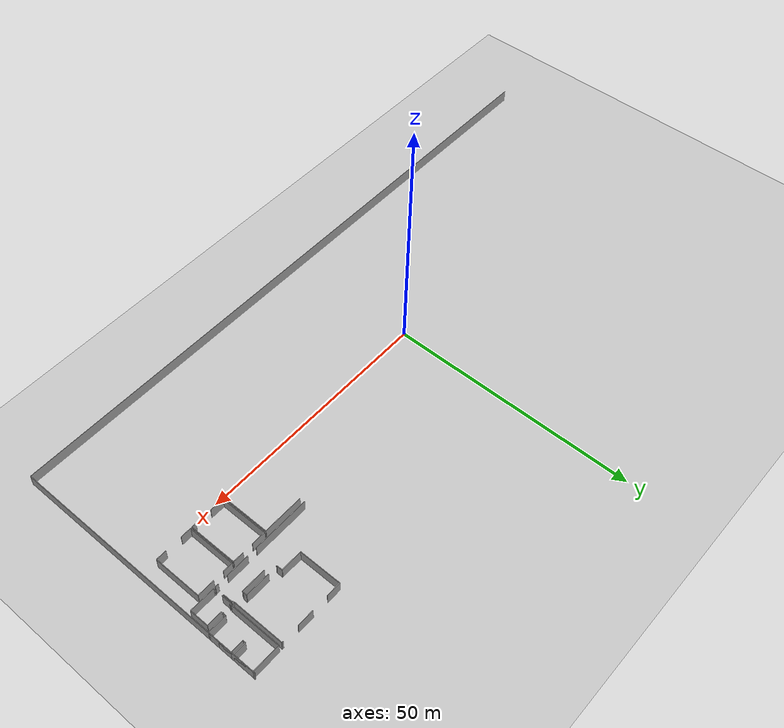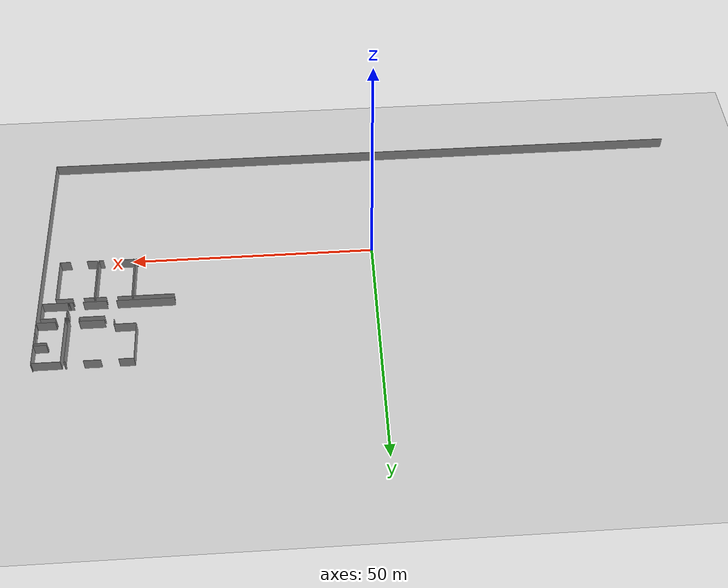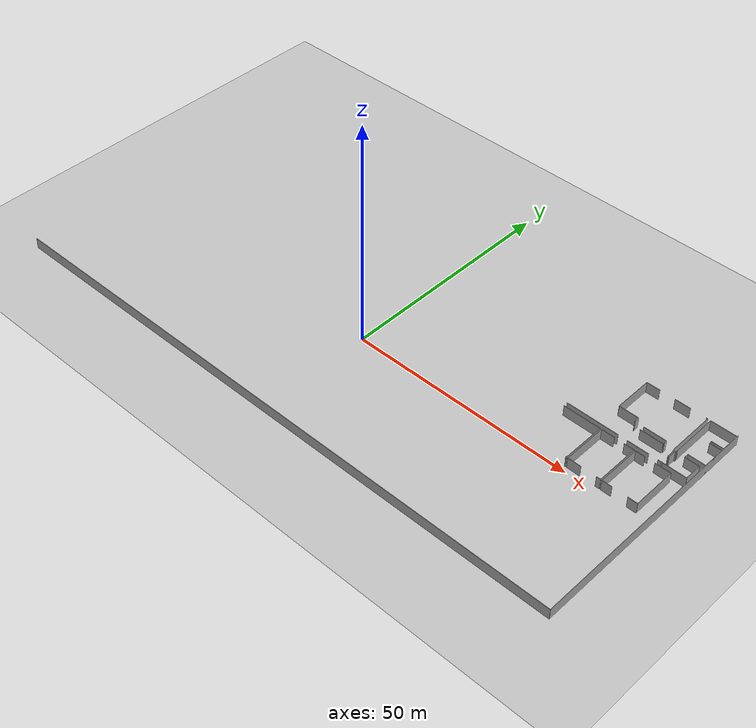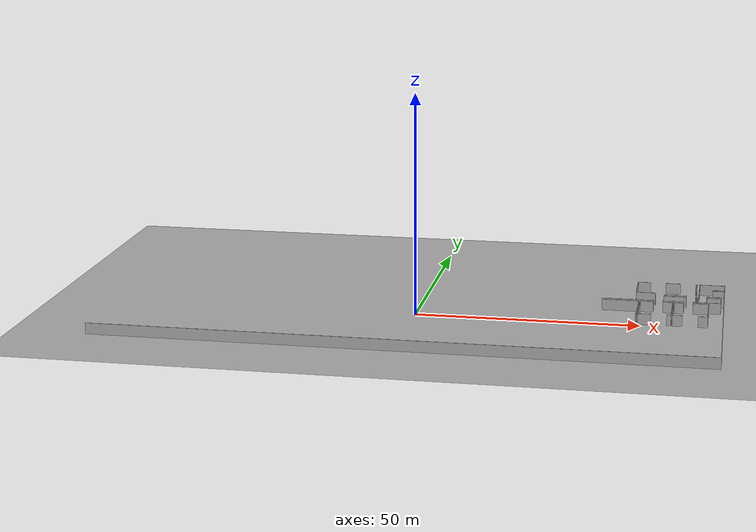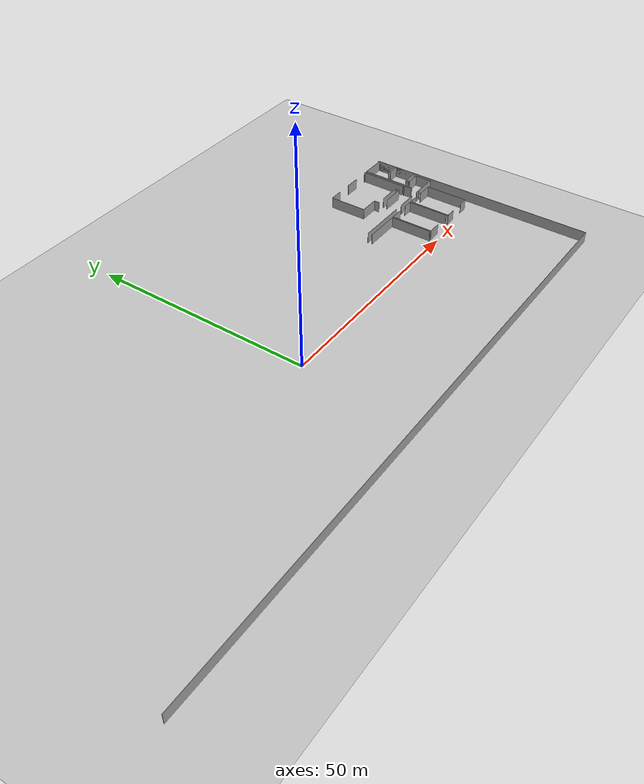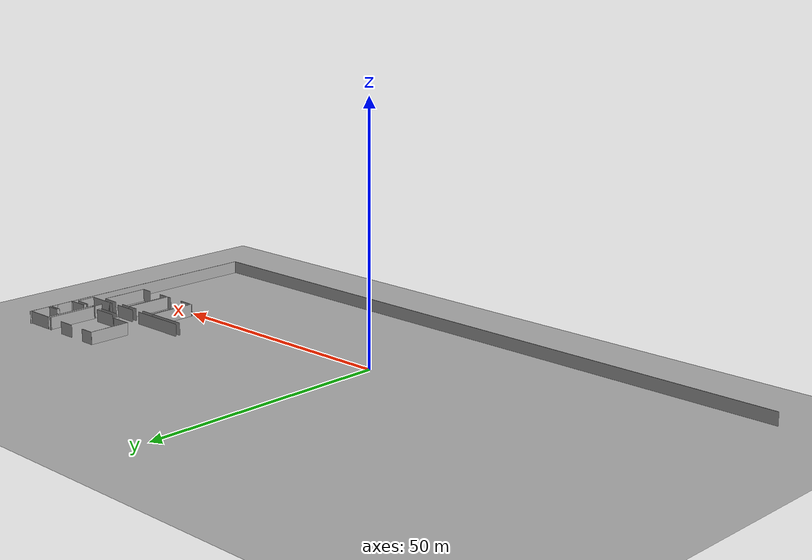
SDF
<sdf version="1.6">
 <world name="default">
  <model name="ground_plane">
   <static>1</static>
   <link name="link">
    <collision name="collision">
     <geometry><plane><normal>0 0 1</normal><size>100 100</size></plane></geometry>
     <surface><friction><ode><mu>100</mu><mu2>50</mu2></ode></friction></surface>
    </collision>
    <visual name="visual">
     <cast_shadows>0</cast_shadows>
     <geometry><plane><normal>0 0 1</normal><size>100 100</size></plane></geometry>
     <material>
      <script><uri>file://media/materials/scripts/gazebo.material</uri><name>Gazebo/Grey</name></script>
     </material>
    </visual>
   </link>
  </model>
  <model name="0510032192_A_40_1_103">
   <static>1</static>
   <link name="Wall_195">
    <collision name="Wall_195_Collision">
     <geometry><box><size>4.99663333884 0.1 2.5</size></box></geometry>
     <pose>2.49831666942 0 1.25 0 0 0</pose>
    </collision>
    <visual name="Wall_195_Visual">
     <pose>2.49831666942 0 1.25 0 0 0</pose>
     <geometry><box><size>4.99663333884 0.1 2.5</size></box></geometry>
     <material>
      <script><uri>file://media/materials/scripts/gazebo.material</uri><name>Gazebo/Grey</name></script>
      <ambient>1 1 1 1</ambient>
     </material>
    </visual>
    <pose>121.824603306 -10.9934826522 0 0 0 0.0</pose>
   </link>
   <link name="Wall_196">
    <collision name="Wall_196_Collision">
     <geometry><box><size>0.207081422383 0.1 2.5</size></box></geometry>
     <pose>0.103540711191 0 1.25 0 0 0</pose>
    </collision>
    <visual name="Wall_196_Visual">
     <pose>0.103540711191 0 1.25 0 0 0</pose>
     <geometry><box><size>0.207081422383 0.1 2.5</size></box></geometry>
     <material>
      <script><uri>file://media/materials/scripts/gazebo.material</uri><name>Gazebo/Grey</name></script>
      <ambient>1 1 1 1</ambient>
     </material>
    </visual>
    <pose>128.998767675 -10.9934826522 0 0 0 0.0</pose>
   </link>
   <link name="Wall_197">
    <collision name="Wall_197_Collision">
     <geometry><box><size>1.85013911298 0.1 2.5</size></box></geometry>
     <pose>0.92506955649 0 1.25 0 0 0</pose>
    </collision>
    <visual name="Wall_197_Visual">
     <pose>0.92506955649 0 1.25 0 0 0</pose>
     <geometry><box><size>1.85013911298 0.1 2.5</size></box></geometry>
     <material>
      <script><uri>file://media/materials/scripts/gazebo.material</uri><name>Gazebo/Grey</name></script>
      <ambient>1 1 1 1</ambient>
     </material>
    </visual>
    <pose>129.205849097 -10.9934826522 0 0 0 -1.57079632679</pose>
   </link>
   <link name="Wall_198">
    <collision name="Wall_198_Collision">
     <geometry><box><size>0.100999834843 0.1 2.5</size></box></geometry>
     <pose>0.0504999174215 0 1.25 0 0 0</pose>
    </collision>
    <visual name="Wall_198_Visual">
     <pose>0.0504999174215 0 1.25 0 0 0</pose>
     <geometry><box><size>0.100999834843 0.1 2.5</size></box></geometry>
     <material>
      <script><uri>file://media/materials/scripts/gazebo.material</uri><name>Gazebo/Grey</name></script>
      <ambient>1 1 1 1</ambient>
     </material>
    </visual>
    <pose>129.205849097 -14.6821998907 0 0 0 -1.57079632679</pose>
   </link>
   <link name="Wall_199">
    <collision name="Wall_199_Collision">
     <geometry><box><size>0.762262904476 0.1 2.5</size></box></geometry>
     <pose>0.381131452238 0 1.25 0 0 0</pose>
    </collision>
    <visual name="Wall_199_Visual">
     <pose>0.381131452238 0 1.25 0 0 0</pose>
     <geometry><box><size>0.762262904476 0.1 2.5</size></box></geometry>
     <material>
      <script><uri>file://media/materials/scripts/gazebo.material</uri><name>Gazebo/Grey</name></script>
      <ambient>1 1 1 1</ambient>
     </material>
    </visual>
    <pose>129.205849097 -14.7831997256 0 0 0 3.14159265359</pose>
   </link>
   <link name="Wall_200">
    <collision name="Wall_200_Collision">
     <geometry><box><size>4.69553949157 0.1 2.5</size></box></geometry>
     <pose>2.34776974579 0 1.25 0 0 0</pose>
    </collision>
    <visual name="Wall_200_Visual">
     <pose>2.34776974579 0 1.25 0 0 0</pose>
     <geometry><box><size>4.69553949157 0.1 2.5</size></box></geometry>
     <material>
      <script><uri>file://media/materials/scripts/gazebo.material</uri><name>Gazebo/Grey</name></script>
      <ambient>1 1 1 1</ambient>
     </material>
    </visual>
    <pose>126.451539136 -14.7831997256 0 0 0 3.14159265359</pose>
   </link>
   <link name="Wall_201">
    <collision name="Wall_201_Collision">
     <geometry><box><size>11.6472501366 0.1 2.5</size></box></geometry>
     <pose>5.82362506829 0 1.25 0 0 0</pose>
    </collision>
    <visual name="Wall_201_Visual">
     <pose>5.82362506829 0 1.25 0 0 0</pose>
     <geometry><box><size>11.6472501366 0.1 2.5</size></box></geometry>
     <material>
      <script><uri>file://media/materials/scripts/gazebo.material</uri><name>Gazebo/Grey</name></script>
      <ambient>1 1 1 1</ambient>
     </material>
    </visual>
    <pose>119.779197845 -14.7831997256 0 0 0 3.14159265359</pose>
   </link>
   <link name="Wall_271">
    <collision name="Wall_271_Collision">
     <geometry><box><size>4.38555257708 0.1 2.5</size></box></geometry>
     <pose>2.19277628854 0 1.25 0 0 0</pose>
    </collision>
    <visual name="Wall_271_Visual">
     <pose>2.19277628854 0 1.25 0 0 0</pose>
     <geometry><box><size>4.38555257708 0.1 2.5</size></box></geometry>
     <material>
      <script><uri>file://media/materials/scripts/gazebo.material</uri><name>Gazebo/Grey</name></script>
      <ambient>1 1 1 1</ambient>
     </material>
    </visual>
    <pose>115.499091637 -8.83284844943 0 0 0 0.0</pose>
   </link>
   <link name="Wall_272">
    <collision name="Wall_272_Collision">
     <geometry><box><size>1.17528235488 0.1 2.5</size></box></geometry>
     <pose>0.587641177442 0 1.25 0 0 0</pose>
    </collision>
    <visual name="Wall_272_Visual">
     <pose>0.587641177442 0 1.25 0 0 0</pose>
     <geometry><box><size>1.17528235488 0.1 2.5</size></box></geometry>
     <material>
      <script><uri>file://media/materials/scripts/gazebo.material</uri><name>Gazebo/Grey</name></script>
      <ambient>1 1 1 1</ambient>
     </material>
    </visual>
    <pose>119.884644214 -8.83284844943 0 0 0 -1.57079632679</pose>
   </link>
   <link name="Wall_273">
    <collision name="Wall_273_Collision">
     <geometry><box><size>0.0952828630595 0.1 2.5</size></box></geometry>
     <pose>0.0476414315297 0 1.25 0 0 0</pose>
    </collision>
    <visual name="Wall_273_Visual">
     <pose>0.0476414315297 0 1.25 0 0 0</pose>
     <geometry><box><size>0.0952828630595 0.1 2.5</size></box></geometry>
     <material>
      <script><uri>file://media/materials/scripts/gazebo.material</uri><name>Gazebo/Grey</name></script>
      <ambient>1 1 1 1</ambient>
     </material>
    </visual>
    <pose>119.884644214 -10.0081308043 0 0 0 0.0</pose>
   </link>
   <link name="Wall_274">
    <collision name="Wall_274_Collision">
     <geometry><box><size>5.0233125405 0.1 2.5</size></box></geometry>
     <pose>2.51165627025 0 1.25 0 0 0</pose>
    </collision>
    <visual name="Wall_274_Visual">
     <pose>2.51165627025 0 1.25 0 0 0</pose>
     <geometry><box><size>5.0233125405 0.1 2.5</size></box></geometry>
     <material>
      <script><uri>file://media/materials/scripts/gazebo.material</uri><name>Gazebo/Grey</name></script>
      <ambient>1 1 1 1</ambient>
     </material>
    </visual>
    <pose>121.837307687 -10.0081308043 0 0 0 0.0</pose>
   </link>
   <link name="Wall_275">
    <collision name="Wall_275_Collision">
     <geometry><box><size>0.720846619999 0.1 2.5</size></box></geometry>
     <pose>0.36042331 0 1.25 0 0 0</pose>
    </collision>
    <visual name="Wall_275_Visual">
     <pose>0.36042331 0 1.25 0 0 0</pose>
     <geometry><box><size>0.720846619999 0.1 2.5</size></box></geometry>
     <material>
      <script><uri>file://media/materials/scripts/gazebo.material</uri><name>Gazebo/Grey</name></script>
      <ambient>1 1 1 1</ambient>
     </material>
    </visual>
    <pose>126.860620228 -10.0081308043 0 0 0 -1.57079632679</pose>
   </link>
   <link name="Wall_276">
    <collision name="Wall_276_Collision">
     <geometry><box><size>10.4130194504 0.1 2.5</size></box></geometry>
     <pose>5.2065097252 0 1.25 0 0 0</pose>
    </collision>
    <visual name="Wall_276_Visual">
     <pose>5.2065097252 0 1.25 0 0 0</pose>
     <geometry><box><size>10.4130194504 0.1 2.5</size></box></geometry>
     <material>
      <script><uri>file://media/materials/scripts/gazebo.material</uri><name>Gazebo/Grey</name></script>
      <ambient>1 1 1 1</ambient>
     </material>
    </visual>
    <pose>128.989874608 -10.7289774243 0 0 0 1.57079632679</pose>
   </link>
   <link name="Wall_277">
    <collision name="Wall_277_Collision">
     <geometry><box><size>0.303634723616 0.1 2.5</size></box></geometry>
     <pose>0.151817361808 0 1.25 0 0 0</pose>
    </collision>
    <visual name="Wall_277_Visual">
     <pose>0.151817361808 0 1.25 0 0 0</pose>
     <geometry><box><size>0.303634723616 0.1 2.5</size></box></geometry>
     <material>
      <script><uri>file://media/materials/scripts/gazebo.material</uri><name>Gazebo/Grey</name></script>
      <ambient>1 1 1 1</ambient>
     </material>
    </visual>
    <pose>128.989874608 -0.315957973905 0 0 0 3.14159265359</pose>
   </link>
   <link name="Wall_278">
    <collision name="Wall_278_Collision">
     <geometry><box><size>3.43272394649 0.1 2.5</size></box></geometry>
     <pose>1.71636197324 0 1.25 0 0 0</pose>
    </collision>
    <visual name="Wall_278_Visual">
     <pose>1.71636197324 0 1.25 0 0 0</pose>
     <geometry><box><size>3.43272394649 0.1 2.5</size></box></geometry>
     <material>
      <script><uri>file://media/materials/scripts/gazebo.material</uri><name>Gazebo/Grey</name></script>
      <ambient>1 1 1 1</ambient>
     </material>
    </visual>
    <pose>125.263679443 -0.315957973905 0 0 0 3.14159265359</pose>
   </link>
   <link name="Wall_279">
    <collision name="Wall_279_Collision">
     <geometry><box><size>2.94360524945 0.1 2.5</size></box></geometry>
     <pose>1.47180262473 0 1.25 0 0 0</pose>
    </collision>
    <visual name="Wall_279_Visual">
     <pose>1.47180262473 0 1.25 0 0 0</pose>
     <geometry><box><size>2.94360524945 0.1 2.5</size></box></geometry>
     <material>
      <script><uri>file://media/materials/scripts/gazebo.material</uri><name>Gazebo/Grey</name></script>
      <ambient>1 1 1 1</ambient>
     </material>
    </visual>
    <pose>118.431262943 -0.315957973905 0 0 0 3.14159265359</pose>
   </link>
   <link name="Wall_280">
    <collision name="Wall_280_Collision">
     <geometry><box><size>8.51689815057 0.1 2.5</size></box></geometry>
     <pose>4.25844907528 0 1.25 0 0 0</pose>
    </collision>
    <visual name="Wall_280_Visual">
     <pose>4.25844907528 0 1.25 0 0 0</pose>
     <geometry><box><size>8.51689815057 0.1 2.5</size></box></geometry>
     <material>
      <script><uri>file://media/materials/scripts/gazebo.material</uri><name>Gazebo/Grey</name></script>
      <ambient>1 1 1 1</ambient>
     </material>
    </visual>
    <pose>115.487657693 -0.315957973905 0 0 0 -1.56945382548</pose>
   </link>
   <link name="Wall_281">
    <collision name="Wall_281_Collision">
     <geometry><box><size>3.79225794977 0.1 2.5</size></box></geometry>
     <pose>1.89612897488 0 1.25 0 0 0</pose>
    </collision>
    <visual name="Wall_281_Visual">
     <pose>1.89612897488 0 1.25 0 0 0</pose>
     <geometry><box><size>3.79225794977 0.1 2.5</size></box></geometry>
     <material>
      <script><uri>file://media/materials/scripts/gazebo.material</uri><name>Gazebo/Grey</name></script>
      <ambient>1 1 1 1</ambient>
     </material>
    </visual>
    <pose>131.512964822 -10.0523420528 0 0 0 0.0</pose>
   </link>
   <link name="Wall_282">
    <collision name="Wall_282_Collision">
     <geometry><box><size>0.292327823866 0.1 2.5</size></box></geometry>
     <pose>0.146163911933 0 1.25 0 0 0</pose>
    </collision>
    <visual name="Wall_282_Visual">
     <pose>0.146163911933 0 1.25 0 0 0</pose>
     <geometry><box><size>0.292327823866 0.1 2.5</size></box></geometry>
     <material>
      <script><uri>file://media/materials/scripts/gazebo.material</uri><name>Gazebo/Grey</name></script>
      <ambient>1 1 1 1</ambient>
     </material>
    </visual>
    <pose>135.305222771 -10.0523420528 0 0 0 1.57079632679</pose>
   </link>
   <link name="Wall_283">
    <collision name="Wall_283_Collision">
     <geometry><box><size>2.73144207437 0.1 2.5</size></box></geometry>
     <pose>1.36572103719 0 1.25 0 0 0</pose>
    </collision>
    <visual name="Wall_283_Visual">
     <pose>1.36572103719 0 1.25 0 0 0</pose>
     <geometry><box><size>2.73144207437 0.1 2.5</size></box></geometry>
     <material>
      <script><uri>file://media/materials/scripts/gazebo.material</uri><name>Gazebo/Grey</name></script>
      <ambient>1 1 1 1</ambient>
     </material>
    </visual>
    <pose>135.305222771 -7.79693316225 0 0 0 1.57079632679</pose>
   </link>
   <link name="Wall_284">
    <collision name="Wall_284_Collision">
     <geometry><box><size>2.58915299887 0.1 2.5</size></box></geometry>
     <pose>1.29457649943 0 1.25 0 0 0</pose>
    </collision>
    <visual name="Wall_284_Visual">
     <pose>1.29457649943 0 1.25 0 0 0</pose>
     <geometry><box><size>2.58915299887 0.1 2.5</size></box></geometry>
     <material>
      <script><uri>file://media/materials/scripts/gazebo.material</uri><name>Gazebo/Grey</name></script>
      <ambient>1 1 1 1</ambient>
     </material>
    </visual>
    <pose>135.305222771 -5.06549108788 0 0 0 3.14159265359</pose>
   </link>
   <link name="Wall_285">
    <collision name="Wall_285_Collision">
     <geometry><box><size>0.55975505952 0.1 2.5</size></box></geometry>
     <pose>0.27987752976 0 1.25 0 0 0</pose>
    </collision>
    <visual name="Wall_285_Visual">
     <pose>0.27987752976 0 1.25 0 0 0</pose>
     <geometry><box><size>0.55975505952 0.1 2.5</size></box></geometry>
     <material>
      <script><uri>file://media/materials/scripts/gazebo.material</uri><name>Gazebo/Grey</name></script>
      <ambient>1 1 1 1</ambient>
     </material>
    </visual>
    <pose>132.716069772 -5.06549108788 0 0 0 1.57079632679</pose>
   </link>
   <link name="Wall_286">
    <collision name="Wall_286_Collision">
     <geometry><box><size>2.58915299887 0.1 2.5</size></box></geometry>
     <pose>1.29457649943 0 1.25 0 0 0</pose>
    </collision>
    <visual name="Wall_286_Visual">
     <pose>1.29457649943 0 1.25 0 0 0</pose>
     <geometry><box><size>2.58915299887 0.1 2.5</size></box></geometry>
     <material>
      <script><uri>file://media/materials/scripts/gazebo.material</uri><name>Gazebo/Grey</name></script>
      <ambient>1 1 1 1</ambient>
     </material>
    </visual>
    <pose>132.716069772 -4.50573602836 0 0 0 0.0</pose>
   </link>
   <link name="Wall_287">
    <collision name="Wall_287_Collision">
     <geometry><box><size>4.17427870873 0.1 2.5</size></box></geometry>
     <pose>2.08713935436 0 1.25 0 0 0</pose>
    </collision>
    <visual name="Wall_287_Visual">
     <pose>2.08713935436 0 1.25 0 0 0</pose>
     <geometry><box><size>4.17427870873 0.1 2.5</size></box></geometry>
     <material>
      <script><uri>file://media/materials/scripts/gazebo.material</uri><name>Gazebo/Grey</name></script>
      <ambient>1 1 1 1</ambient>
     </material>
    </visual>
    <pose>135.305222771 -4.50573602836 0 0 0 1.57079632679</pose>
   </link>
   <link name="Wall_288">
    <collision name="Wall_288_Collision">
     <geometry><box><size>5.66742469478 0.1 2.5</size></box></geometry>
     <pose>2.83371234739 0 1.25 0 0 0</pose>
    </collision>
    <visual name="Wall_288_Visual">
     <pose>2.83371234739 0 1.25 0 0 0</pose>
     <geometry><box><size>5.66742469478 0.1 2.5</size></box></geometry>
     <material>
      <script><uri>file://media/materials/scripts/gazebo.material</uri><name>Gazebo/Grey</name></script>
      <ambient>1 1 1 1</ambient>
     </material>
    </visual>
    <pose>135.305222771 -0.33145731963 0 0 0 3.14159265359</pose>
   </link>
   <link name="Wall_289">
    <collision name="Wall_289_Collision">
     <geometry><box><size>10.3644887122 0.1 2.5</size></box></geometry>
     <pose>5.18224435608 0 1.25 0 0 0</pose>
    </collision>
    <visual name="Wall_289_Visual">
     <pose>5.18224435608 0 1.25 0 0 0</pose>
     <geometry><box><size>10.3644887122 0.1 2.5</size></box></geometry>
     <material>
      <script><uri>file://media/materials/scripts/gazebo.material</uri><name>Gazebo/Grey</name></script>
      <ambient>1 1 1 1</ambient>
     </material>
    </visual>
    <pose>129.637798077 -0.33145731963 0 0 0 -1.57079632679</pose>
   </link>
   <link name="Wall_290">
    <collision name="Wall_290_Collision">
     <geometry><box><size>0.0749558522734 0.1 2.5</size></box></geometry>
     <pose>0.0374779261367 0 1.25 0 0 0</pose>
    </collision>
    <visual name="Wall_290_Visual">
     <pose>0.0374779261367 0 1.25 0 0 0</pose>
     <geometry><box><size>0.0749558522734 0.1 2.5</size></box></geometry>
     <material>
      <script><uri>file://media/materials/scripts/gazebo.material</uri><name>Gazebo/Grey</name></script>
      <ambient>1 1 1 1</ambient>
     </material>
    </visual>
    <pose>129.637798077 -10.6959460318 0 0 0 0.0</pose>
   </link>
   <link name="Wall_291">
    <collision name="Wall_291_Collision">
     <geometry><box><size>0.119421188368 0.1 2.5</size></box></geometry>
     <pose>0.0597105941839 0 1.25 0 0 0</pose>
    </collision>
    <visual name="Wall_291_Visual">
     <pose>0.0597105941839 0 1.25 0 0 0</pose>
     <geometry><box><size>0.119421188368 0.1 2.5</size></box></geometry>
     <material>
      <script><uri>file://media/materials/scripts/gazebo.material</uri><name>Gazebo/Grey</name></script>
      <ambient>1 1 1 1</ambient>
     </material>
    </visual>
    <pose>131.387191442 -10.6959460318 0 0 0 0.0</pose>
   </link>
   <link name="Wall_292">
    <collision name="Wall_292_Collision">
     <geometry><box><size>0.643635325421 0.1 2.5</size></box></geometry>
     <pose>0.32181766271 0 1.25 0 0 0</pose>
    </collision>
    <visual name="Wall_292_Visual">
     <pose>0.32181766271 0 1.25 0 0 0</pose>
     <geometry><box><size>0.643635325421 0.1 2.5</size></box></geometry>
     <material>
      <script><uri>file://media/materials/scripts/gazebo.material</uri><name>Gazebo/Grey</name></script>
      <ambient>1 1 1 1</ambient>
     </material>
    </visual>
    <pose>131.506612631 -10.6959460318 0 0 0 1.56092692755</pose>
   </link>
   <link name="Wall_293">
    <collision name="Wall_293_Collision">
     <geometry><box><size>0.0863897958406 0.1 2.5</size></box></geometry>
     <pose>0.0431948979203 0 1.25 0 0 0</pose>
    </collision>
    <visual name="Wall_293_Visual">
     <pose>0.0431948979203 0 1.25 0 0 0</pose>
     <geometry><box><size>0.0863897958406 0.1 2.5</size></box></geometry>
     <material>
      <script><uri>file://media/materials/scripts/gazebo.material</uri><name>Gazebo/Grey</name></script>
      <ambient>1 1 1 1</ambient>
     </material>
    </visual>
    <pose>129.449773227 -14.7804047616 0 0 0 1.57079632679</pose>
   </link>
   <link name="Wall_294">
    <collision name="Wall_294_Collision">
     <geometry><box><size>1.90159185903 0.1 2.5</size></box></geometry>
     <pose>0.950795929516 0 1.25 0 0 0</pose>
    </collision>
    <visual name="Wall_294_Visual">
     <pose>0.950795929516 0 1.25 0 0 0</pose>
     <geometry><box><size>1.90159185903 0.1 2.5</size></box></geometry>
     <material>
      <script><uri>file://media/materials/scripts/gazebo.material</uri><name>Gazebo/Grey</name></script>
      <ambient>1 1 1 1</ambient>
     </material>
    </visual>
    <pose>129.449773227 -12.8823701295 0 0 0 1.57079632679</pose>
   </link>
   <link name="Wall_295">
    <collision name="Wall_295_Collision">
     <geometry><box><size>0.264251140218 0.1 2.5</size></box></geometry>
     <pose>0.132125570109 0 1.25 0 0 0</pose>
    </collision>
    <visual name="Wall_295_Visual">
     <pose>0.132125570109 0 1.25 0 0 0</pose>
     <geometry><box><size>0.264251140218 0.1 2.5</size></box></geometry>
     <material>
      <script><uri>file://media/materials/scripts/gazebo.material</uri><name>Gazebo/Grey</name></script>
      <ambient>1 1 1 1</ambient>
     </material>
    </visual>
    <pose>129.449773227 -10.9807782704 0 0 0 0.0</pose>
   </link>
   <link name="Wall_296">
    <collision name="Wall_296_Collision">
     <geometry><box><size>3.10876221209 0.1 2.5</size></box></geometry>
     <pose>1.55438110604 0 1.25 0 0 0</pose>
    </collision>
    <visual name="Wall_296_Visual">
     <pose>1.55438110604 0 1.25 0 0 0</pose>
     <geometry><box><size>3.10876221209 0.1 2.5</size></box></geometry>
     <material>
      <script><uri>file://media/materials/scripts/gazebo.material</uri><name>Gazebo/Grey</name></script>
      <ambient>1 1 1 1</ambient>
     </material>
    </visual>
    <pose>131.487556058 -10.9807782704 0 0 0 0.0</pose>
   </link>
   <link name="Wall_297">
    <collision name="Wall_297_Collision">
     <geometry><box><size>3.80331076188 0.1 2.5</size></box></geometry>
     <pose>1.90165538094 0 1.25 0 0 0</pose>
    </collision>
    <visual name="Wall_297_Visual">
     <pose>1.90165538094 0 1.25 0 0 0</pose>
     <geometry><box><size>3.80331076188 0.1 2.5</size></box></geometry>
     <material>
      <script><uri>file://media/materials/scripts/gazebo.material</uri><name>Gazebo/Grey</name></script>
      <ambient>1 1 1 1</ambient>
     </material>
    </visual>
    <pose>134.59631827 -10.9807782704 0 0 0 -1.57079632679</pose>
   </link>
   <link name="Wall_298">
    <collision name="Wall_298_Collision">
     <geometry><box><size>5.14654636212 0.1 2.5</size></box></geometry>
     <pose>2.57327318106 0 1.25 0 0 0</pose>
    </collision>
    <visual name="Wall_298_Visual">
     <pose>2.57327318106 0 1.25 0 0 0</pose>
     <geometry><box><size>5.14654636212 0.1 2.5</size></box></geometry>
     <material>
      <script><uri>file://media/materials/scripts/gazebo.material</uri><name>Gazebo/Grey</name></script>
      <ambient>1 1 1 1</ambient>
     </material>
    </visual>
    <pose>134.59631827 -14.7840890323 0 0 0 3.14087678109</pose>
   </link>
   <link name="Wall_299">
    <collision name="Wall_299_Collision">
     <geometry><box><size>2.20166935576 0.1 2.5</size></box></geometry>
     <pose>1.10083467788 0 1.25 0 0 0</pose>
    </collision>
    <visual name="Wall_299_Visual">
     <pose>1.10083467788 0 1.25 0 0 0</pose>
     <geometry><box><size>2.20166935576 0.1 2.5</size></box></geometry>
     <material>
      <script><uri>file://media/materials/scripts/gazebo.material</uri><name>Gazebo/Grey</name></script>
      <ambient>1 1 1 1</ambient>
     </material>
    </visual>
    <pose>124.296875993 -25.4654250251 0 0 0 0.0</pose>
   </link>
   <link name="Wall_300">
    <collision name="Wall_300_Collision">
     <geometry><box><size>2.10257517818 0.1 2.5</size></box></geometry>
     <pose>1.05128758909 0 1.25 0 0 0</pose>
    </collision>
    <visual name="Wall_300_Visual">
     <pose>1.05128758909 0 1.25 0 0 0</pose>
     <geometry><box><size>2.10257517818 0.1 2.5</size></box></geometry>
     <material>
      <script><uri>file://media/materials/scripts/gazebo.material</uri><name>Gazebo/Grey</name></script>
      <ambient>1 1 1 1</ambient>
     </material>
    </visual>
    <pose>129.871558701 -25.4654250251 0 0 0 0.0</pose>
   </link>
   <link name="Wall_301">
    <collision name="Wall_301_Collision">
     <geometry><box><size>9.69052126078 0.1 2.5</size></box></geometry>
     <pose>4.84526063039 0 1.25 0 0 0</pose>
    </collision>
    <visual name="Wall_301_Visual">
     <pose>4.84526063039 0 1.25 0 0 0</pose>
     <geometry><box><size>9.69052126078 0.1 2.5</size></box></geometry>
     <material>
      <script><uri>file://media/materials/scripts/gazebo.material</uri><name>Gazebo/Grey</name></script>
      <ambient>1 1 1 1</ambient>
     </material>
    </visual>
    <pose>131.974133879 -25.4654250251 0 0 0 1.57079632679</pose>
   </link>
   <link name="Wall_302">
    <collision name="Wall_302_Collision">
     <geometry><box><size>3.46448490084 0.1 2.5</size></box></geometry>
     <pose>1.73224245042 0 1.25 0 0 0</pose>
    </collision>
    <visual name="Wall_302_Visual">
     <pose>1.73224245042 0 1.25 0 0 0</pose>
     <geometry><box><size>3.46448490084 0.1 2.5</size></box></geometry>
     <material>
      <script><uri>file://media/materials/scripts/gazebo.material</uri><name>Gazebo/Grey</name></script>
      <ambient>1 1 1 1</ambient>
     </material>
    </visual>
    <pose>131.974133879 -15.7749037643 0 0 0 3.14159265359</pose>
   </link>
   <link name="Wall_303">
    <collision name="Wall_303_Collision">
     <geometry><box><size>2.04540546034 0.1 2.5</size></box></geometry>
     <pose>1.02270273017 0 1.25 0 0 0</pose>
    </collision>
    <visual name="Wall_303_Visual">
     <pose>1.02270273017 0 1.25 0 0 0</pose>
     <geometry><box><size>2.04540546034 0.1 2.5</size></box></geometry>
     <material>
      <script><uri>file://media/materials/scripts/gazebo.material</uri><name>Gazebo/Grey</name></script>
      <ambient>1 1 1 1</ambient>
     </material>
    </visual>
    <pose>126.363878902 -15.7749037643 0 0 0 3.14159265359</pose>
   </link>
   <link name="Wall_304">
    <collision name="Wall_304_Collision">
     <geometry><box><size>9.69054532808 0.1 2.5</size></box></geometry>
     <pose>4.84527266404 0 1.25 0 0 0</pose>
    </collision>
    <visual name="Wall_304_Visual">
     <pose>4.84527266404 0 1.25 0 0 0</pose>
     <geometry><box><size>9.69054532808 0.1 2.5</size></box></geometry>
     <material>
      <script><uri>file://media/materials/scripts/gazebo.material</uri><name>Gazebo/Grey</name></script>
      <ambient>1 1 1 1</ambient>
     </material>
    </visual>
    <pose>124.318473441 -15.7749037643 0 0 0 -1.57302504212</pose>
   </link>
   <link name="Wall_305">
    <collision name="Wall_305_Collision">
     <geometry><box><size>9.67730870377 0.1 2.5</size></box></geometry>
     <pose>4.83865435189 0 1.25 0 0 0</pose>
    </collision>
    <visual name="Wall_305_Visual">
     <pose>4.83865435189 0 1.25 0 0 0</pose>
     <geometry><box><size>9.67730870377 0.1 2.5</size></box></geometry>
     <material>
      <script><uri>file://media/materials/scripts/gazebo.material</uri><name>Gazebo/Grey</name></script>
      <ambient>1 1 1 1</ambient>
     </material>
    </visual>
    <pose>116.759366305 -25.4433194009 0 0 0 1.57079632679</pose>
   </link>
   <link name="Wall_306">
    <collision name="Wall_306_Collision">
     <geometry><box><size>2.90803298058 0.1 2.5</size></box></geometry>
     <pose>1.45401649029 0 1.25 0 0 0</pose>
    </collision>
    <visual name="Wall_306_Visual">
     <pose>1.45401649029 0 1.25 0 0 0</pose>
     <geometry><box><size>2.90803298058 0.1 2.5</size></box></geometry>
     <material>
      <script><uri>file://media/materials/scripts/gazebo.material</uri><name>Gazebo/Grey</name></script>
      <ambient>1 1 1 1</ambient>
     </material>
    </visual>
    <pose>116.759366305 -15.7660106971 0 0 0 0.0</pose>
   </link>
   <link name="Wall_307">
    <collision name="Wall_307_Collision">
     <geometry><box><size>2.19658760306 0.1 2.5</size></box></geometry>
     <pose>1.09829380153 0 1.25 0 0 0</pose>
    </collision>
    <visual name="Wall_307_Visual">
     <pose>1.09829380153 0 1.25 0 0 0</pose>
     <geometry><box><size>2.19658760306 0.1 2.5</size></box></geometry>
     <material>
      <script><uri>file://media/materials/scripts/gazebo.material</uri><name>Gazebo/Grey</name></script>
      <ambient>1 1 1 1</ambient>
     </material>
    </visual>
    <pose>121.824603306 -15.7660106971 0 0 0 0.0</pose>
   </link>
   <link name="Wall_308">
    <collision name="Wall_308_Collision">
     <geometry><box><size>9.70271746725 0.1 2.5</size></box></geometry>
     <pose>4.85135873363 0 1.25 0 0 0</pose>
    </collision>
    <visual name="Wall_308_Visual">
     <pose>4.85135873363 0 1.25 0 0 0</pose>
     <geometry><box><size>9.70271746725 0.1 2.5</size></box></geometry>
     <material>
      <script><uri>file://media/materials/scripts/gazebo.material</uri><name>Gazebo/Grey</name></script>
      <ambient>1 1 1 1</ambient>
     </material>
    </visual>
    <pose>124.021190909 -15.7660106971 0 0 0 -1.57079632679</pose>
   </link>
   <link name="Wall_309">
    <collision name="Wall_309_Collision">
     <geometry><box><size>0.927419867112 0.1 2.5</size></box></geometry>
     <pose>0.463709933556 0 1.25 0 0 0</pose>
    </collision>
    <visual name="Wall_309_Visual">
     <pose>0.463709933556 0 1.25 0 0 0</pose>
     <geometry><box><size>0.927419867112 0.1 2.5</size></box></geometry>
     <material>
      <script><uri>file://media/materials/scripts/gazebo.material</uri><name>Gazebo/Grey</name></script>
      <ambient>1 1 1 1</ambient>
     </material>
    </visual>
    <pose>124.021190909 -25.4687281643 0 0 0 3.14159265359</pose>
   </link>
   <link name="Wall_310">
    <collision name="Wall_310_Collision">
     <geometry><box><size>2.9271998322 0.1 2.5</size></box></geometry>
     <pose>1.4635999161 0 1.25 0 0 0</pose>
    </collision>
    <visual name="Wall_310_Visual">
     <pose>1.4635999161 0 1.25 0 0 0</pose>
     <geometry><box><size>2.9271998322 0.1 2.5</size></box></geometry>
     <material>
      <script><uri>file://media/materials/scripts/gazebo.material</uri><name>Gazebo/Grey</name></script>
      <ambient>1 1 1 1</ambient>
     </material>
    </visual>
    <pose>119.686455859 -25.4687281643 0 0 0 3.13291231606</pose>
   </link>
   <link name="Wall_313">
    <collision name="Wall_313_Collision">
     <geometry><box><size>0.217244927776 0.1 2.5</size></box></geometry>
     <pose>0.108622463888 0 1.25 0 0 0</pose>
    </collision>
    <visual name="Wall_313_Visual">
     <pose>0.108622463888 0 1.25 0 0 0</pose>
     <geometry><box><size>0.217244927776 0.1 2.5</size></box></geometry>
     <material>
      <script><uri>file://media/materials/scripts/gazebo.material</uri><name>Gazebo/Grey</name></script>
      <ambient>1 1 1 1</ambient>
     </material>
    </visual>
    <pose>116.251191036 -25.4306150191 0 0 0 0.0</pose>
   </link>
   <link name="Wall_314">
    <collision name="Wall_314_Collision">
     <geometry><box><size>9.66460432203 0.1 2.5</size></box></geometry>
     <pose>4.83230216102 0 1.25 0 0 0</pose>
    </collision>
    <visual name="Wall_314_Visual">
     <pose>4.83230216102 0 1.25 0 0 0</pose>
     <geometry><box><size>9.66460432203 0.1 2.5</size></box></geometry>
     <material>
      <script><uri>file://media/materials/scripts/gazebo.material</uri><name>Gazebo/Grey</name></script>
      <ambient>1 1 1 1</ambient>
     </material>
    </visual>
    <pose>116.468435964 -25.4306150191 0 0 0 1.57079632679</pose>
   </link>
   <link name="Wall_315">
    <collision name="Wall_315_Collision">
     <geometry><box><size>8.26851981248 0.1 2.5</size></box></geometry>
     <pose>4.13425990624 0 1.25 0 0 0</pose>
    </collision>
    <visual name="Wall_315_Visual">
     <pose>4.13425990624 0 1.25 0 0 0</pose>
     <geometry><box><size>8.26851981248 0.1 2.5</size></box></geometry>
     <material>
      <script><uri>file://media/materials/scripts/gazebo.material</uri><name>Gazebo/Grey</name></script>
      <ambient>1 1 1 1</ambient>
     </material>
    </visual>
    <pose>116.468435964 -15.7660106971 0 0 0 3.14159265359</pose>
   </link>
   <link name="Wall_466">
    <collision name="Wall_466_Collision">
     <geometry><box><size>53.3402360474 0.1 2.5</size></box></geometry>
     <pose>26.6701180237 0 1.25 0 0 0</pose>
    </collision>
    <visual name="Wall_466_Visual">
     <pose>26.6701180237 0 1.25 0 0 0</pose>
     <geometry><box><size>53.3402360474 0.1 2.5</size></box></geometry>
     <material>
      <script><uri>file://media/materials/scripts/gazebo.material</uri><name>Gazebo/Grey</name></script>
      <ambient>1 1 1 1</ambient>
     </material>
    </visual>
    <pose>135.305222771 -53.3402360474 0 0 0 1.57079632679</pose>
   </link>
   <link name="Wall_467">
    <collision name="Wall_467_Collision">
     <geometry><box><size>135.305222771 0.1 2.5</size></box></geometry>
     <pose>67.6526113857 0 1.25 0 0 0</pose>
    </collision>
    <visual name="Wall_467_Visual">
     <pose>67.6526113857 0 1.25 0 0 0</pose>
     <geometry><box><size>135.305222771 0.1 2.5</size></box></geometry>
     <material>
      <script><uri>file://media/materials/scripts/gazebo.material</uri><name>Gazebo/Grey</name></script>
      <ambient>1 1 1 1</ambient>
     </material>
    </visual>
    <pose>135.305222771 -53.3402360474 0 0 0 3.14159265359</pose>
   </link>
   <pose>-67.5 26.6902360474 0 0 0 0</pose>
  </model>
 </world>
</sdf>
